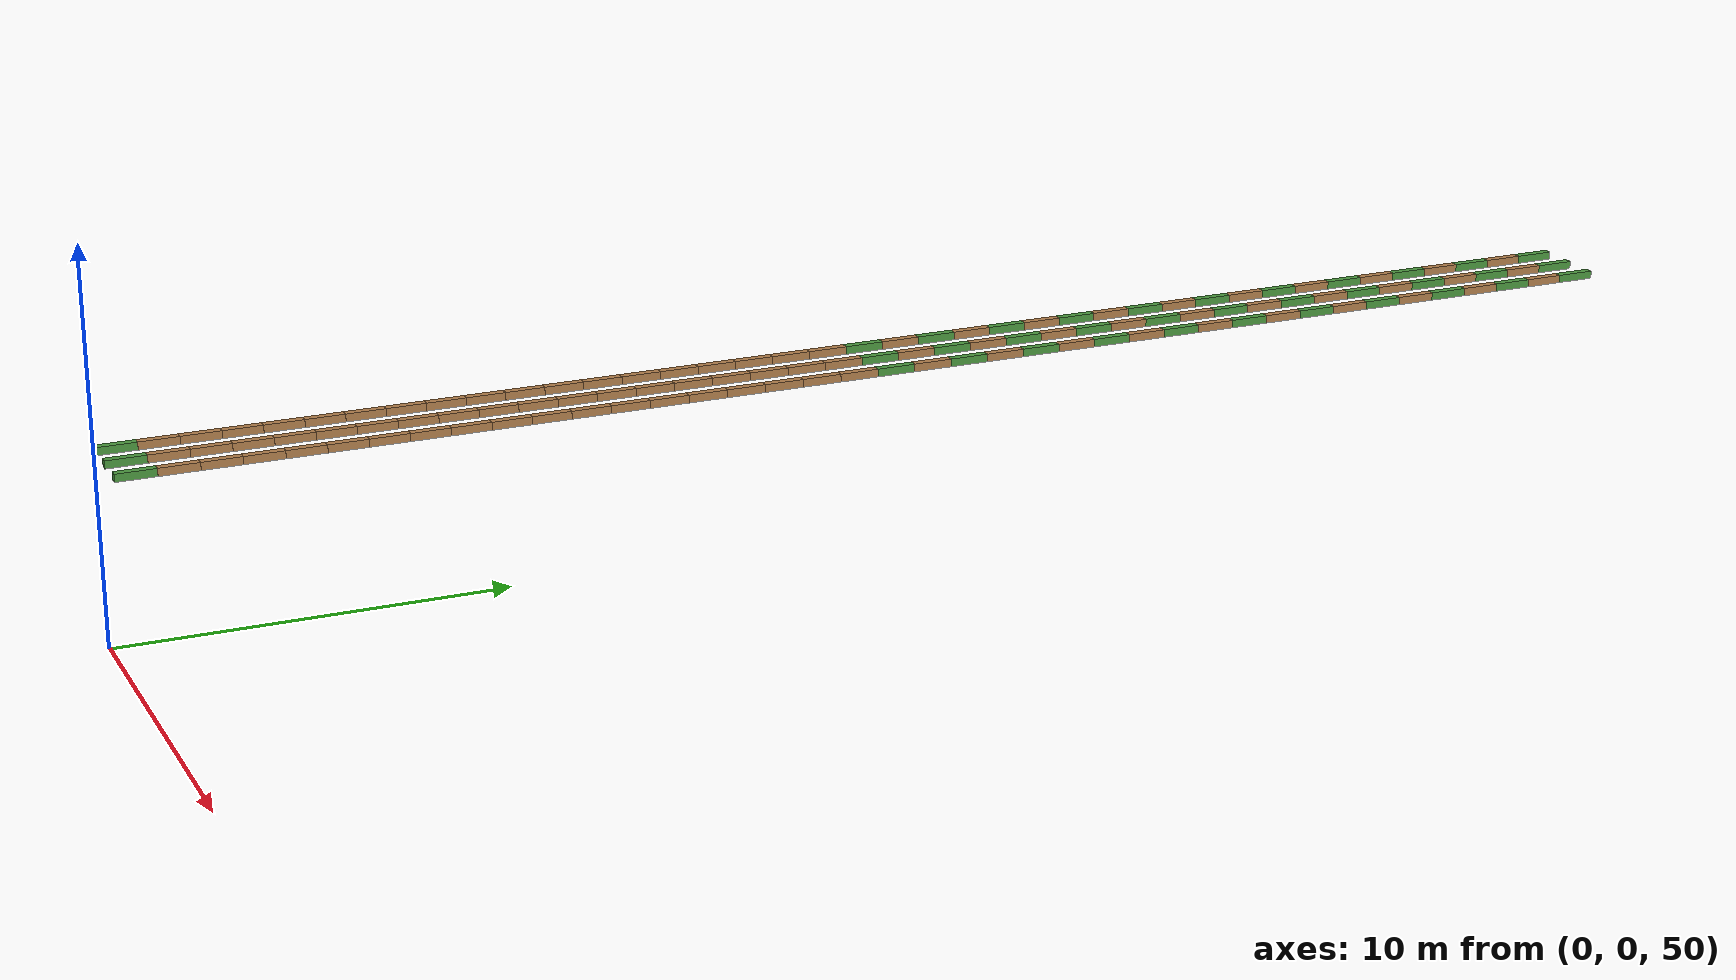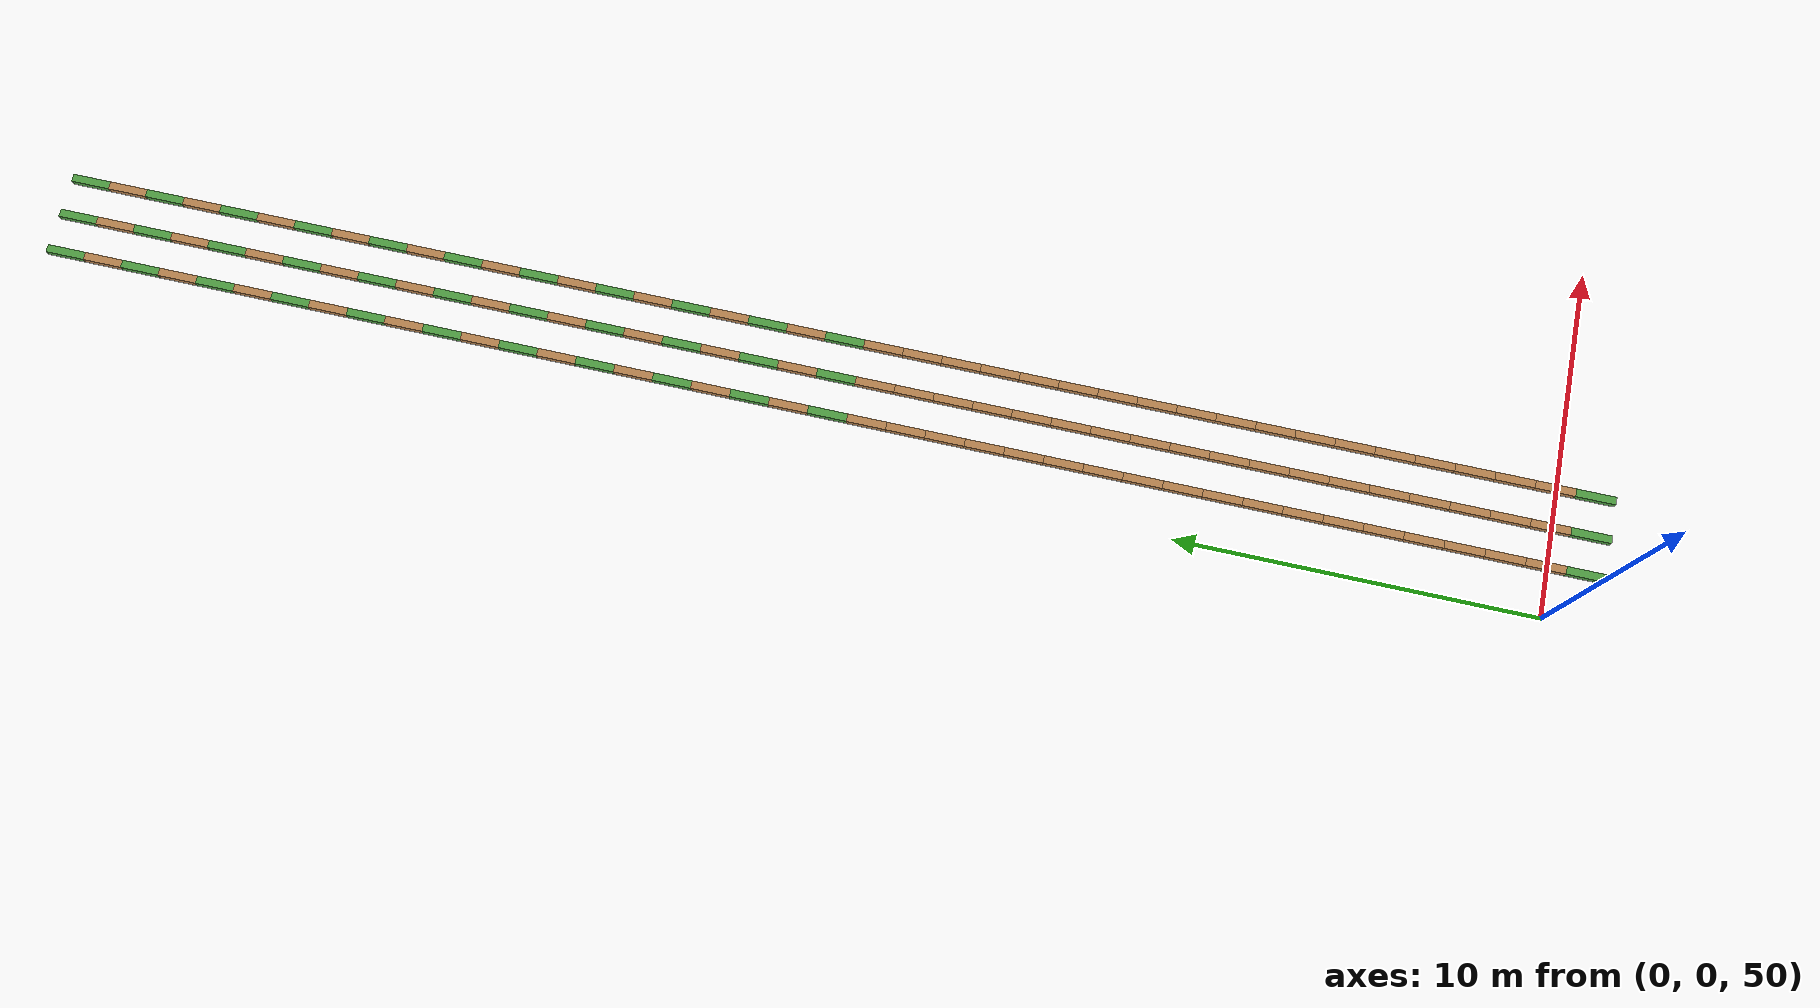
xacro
<?xml version="1.0"?>
<robot name="continuous_pendulum"
       xmlns:xi="http://www.w3.org/2001/XInclude"
       xmlns:gazebo="http://playerstage.sourceforge.net/gazebo/xmlschema/#gz"
       xmlns:model="http://playerstage.sourceforge.net/gazebo/xmlschema/#model"
       xmlns:sensor="http://playerstage.sourceforge.net/gazebo/xmlschema/#sensor"
       xmlns:body="http://playerstage.sourceforge.net/gazebo/xmlschema/#body"
       xmlns:geom="http://playerstage.sourceforge.net/gazebo/xmlschema/#geom"
       xmlns:joint="http://playerstage.sourceforge.net/gazebo/xmlschema/#joint"
       xmlns:interface="http://playerstage.sourceforge.net/gazebo/xmlschema/#interface"
       xmlns:rendering="http://playerstage.sourceforge.net/gazebo/xmlschema/#rendering"
       xmlns:renderable="http://playerstage.sourceforge.net/gazebo/xmlschema/#renderable"
       xmlns:controller="http://playerstage.sourceforge.net/gazebo/xmlschema/#controller"
       xmlns:xacro="http://ros.org/wiki/xacro"
       xmlns:physics="http://playerstage.sourceforge.net/gazebo/xmlschema/#physics">

  <link name="world"/>
  <!--
     A pendulum constructed from single continuous link and a mass with some moment of inertia
  -->
  <xacro:macro name="one_link" params="link_name parent *axis *origin material">
    <joint name="${link_name}_joint" type="continuous" >
      <insert_block name="origin"/>
      <insert_block name="axis"/>
      <parent link="${parent}" />
      <child link="${link_name}" />
      <dynamics damping="0.0" />
    </joint>
    <link name="${link_name}">
      <inertial >
        <mass value="1.0" />
        <origin xyz="0 1 0" />
        <inertia  ixx="0.0" ixy="0.0"  ixz="0.0"  iyy="0.0"  iyz="0.0"  izz="0.0" />
      </inertial>
      <visual >
        <origin xyz="0 0.5 0" rpy="0 0 0" />
        <geometry>
          <box size="0.2 1.0 0.2" />
        </geometry>
      </visual>
      <collision >
        <origin xyz="0 0.5 0" rpy="0 0 0" />
        <geometry>
          <box size="0.2 1.0 0.2" />
        </geometry>
      </collision>
    </link>
    <gazebo reference="${link_name}">
      <material>${material}</material>
      <turnGravityOff>false</turnGravityOff>
    </gazebo>
  </xacro:macro>

  <xacro:one_link link_name="link1" parent="world" material="Gazebo/GrassFloor">
    <origin xyz="0 0 55" rpy="0 0 0"/>
    <axis xyz="1 0 0" />
  </xacro:one_link>
  <xacro:one_link link_name="link2" parent="link1" material="Gazebo/LightWood">
    <origin xyz="0 1 0" rpy="0 0 0"/>
    <axis xyz="1 0 0" />
  </xacro:one_link>
  <xacro:one_link link_name="link3" parent="link2" material="Gazebo/LightWood">
    <origin xyz="0 1 0" rpy="0 0 0"/>
    <axis xyz="1 0 0" />
  </xacro:one_link>
  <xacro:one_link link_name="link4" parent="link3" material="Gazebo/LightWood">
    <origin xyz="0 1 0" rpy="0 0 0"/>
    <axis xyz="1 0 0" />
  </xacro:one_link>
  <xacro:one_link link_name="link5" parent="link4" material="Gazebo/LightWood">
    <origin xyz="0 1 0" rpy="0 0 0"/>
    <axis xyz="1 0 0" />
  </xacro:one_link>
  <xacro:one_link link_name="link6" parent="link5" material="Gazebo/LightWood">
    <origin xyz="0 1 0" rpy="0 0 0"/>
    <axis xyz="1 0 0" />
  </xacro:one_link>
  <xacro:one_link link_name="link7" parent="link6" material="Gazebo/LightWood">
    <origin xyz="0 1 0" rpy="0 0 0"/>
    <axis xyz="1 0 0" />
  </xacro:one_link>
  <xacro:one_link link_name="link8" parent="link7" material="Gazebo/LightWood">
    <origin xyz="0 1 0" rpy="0 0 0"/>
    <axis xyz="1 0 0" />
  </xacro:one_link>
  <xacro:one_link link_name="link9" parent="link8" material="Gazebo/LightWood">
    <origin xyz="0 1 0" rpy="0 0 0"/>
    <axis xyz="1 0 0" />
  </xacro:one_link>
  <xacro:one_link link_name="link10" parent="link9" material="Gazebo/LightWood">
    <origin xyz="0 1 0" rpy="0 0 0"/>
    <axis xyz="1 0 0" />
  </xacro:one_link>
  <xacro:one_link link_name="link11" parent="link10" material="Gazebo/LightWood">
    <origin xyz="0 1 0" rpy="0 0 0"/>
    <axis xyz="1 0 0" />
  </xacro:one_link>
  <xacro:one_link link_name="link12" parent="link11" material="Gazebo/LightWood">
    <origin xyz="0 1 0" rpy="0 0 0"/>
    <axis xyz="1 0 0" />
  </xacro:one_link>
  <xacro:one_link link_name="link13" parent="link12" material="Gazebo/LightWood">
    <origin xyz="0 1 0" rpy="0 0 0"/>
    <axis xyz="1 0 0" />
  </xacro:one_link>
  <xacro:one_link link_name="link14" parent="link13" material="Gazebo/LightWood">
    <origin xyz="0 1 0" rpy="0 0 0"/>
    <axis xyz="1 0 0" />
  </xacro:one_link>
  <xacro:one_link link_name="link15" parent="link14" material="Gazebo/LightWood">
    <origin xyz="0 1 0" rpy="0 0 0"/>
    <axis xyz="1 0 0" />
  </xacro:one_link>
  <xacro:one_link link_name="link16" parent="link15" material="Gazebo/LightWood">
    <origin xyz="0 1 0" rpy="0 0 0"/>
    <axis xyz="1 0 0" />
  </xacro:one_link>
  <xacro:one_link link_name="link17" parent="link16" material="Gazebo/LightWood">
    <origin xyz="0 1 0" rpy="0 0 0"/>
    <axis xyz="1 0 0" />
  </xacro:one_link>
  <xacro:one_link link_name="link18" parent="link17" material="Gazebo/LightWood">
    <origin xyz="0 1 0" rpy="0 0 0"/>
    <axis xyz="1 0 0" />
  </xacro:one_link>
  <xacro:one_link link_name="link19" parent="link18" material="Gazebo/LightWood">
    <origin xyz="0 1 0" rpy="0 0 0"/>
    <axis xyz="1 0 0" />
  </xacro:one_link>
  <xacro:one_link link_name="link20" parent="link19" material="Gazebo/GrassFloor">
    <origin xyz="0 1 0" rpy="0 0 0"/>
    <axis xyz="1 0 0" />
  </xacro:one_link>
  <xacro:one_link link_name="link21" parent="link20" material="Gazebo/LightWood">
    <origin xyz="0 1 0" rpy="0 0 0"/>
    <axis xyz="1 0 0" />
  </xacro:one_link>
  <xacro:one_link link_name="link22" parent="link21" material="Gazebo/GrassFloor">
    <origin xyz="0 1 0" rpy="0 0 0"/>
    <axis xyz="1 0 0" />
  </xacro:one_link>
  <xacro:one_link link_name="link23" parent="link22" material="Gazebo/LightWood">
    <origin xyz="0 1 0" rpy="0 0 0"/>
    <axis xyz="1 0 0" />
  </xacro:one_link>
  <xacro:one_link link_name="link24" parent="link23" material="Gazebo/GrassFloor">
    <origin xyz="0 1 0" rpy="0 0 0"/>
    <axis xyz="1 0 0" />
  </xacro:one_link>
  <xacro:one_link link_name="link25" parent="link24" material="Gazebo/LightWood">
    <origin xyz="0 1 0" rpy="0 0 0"/>
    <axis xyz="1 0 0" />
  </xacro:one_link>
  <xacro:one_link link_name="link26" parent="link25" material="Gazebo/GrassFloor">
    <origin xyz="0 1 0" rpy="0 0 0"/>
    <axis xyz="1 0 0" />
  </xacro:one_link>
  <xacro:one_link link_name="link27" parent="link26" material="Gazebo/LightWood">
    <origin xyz="0 1 0" rpy="0 0 0"/>
    <axis xyz="1 0 0" />
  </xacro:one_link>
  <xacro:one_link link_name="link28" parent="link27" material="Gazebo/GrassFloor">
    <origin xyz="0 1 0" rpy="0 0 0"/>
    <axis xyz="1 0 0" />
  </xacro:one_link>
  <xacro:one_link link_name="link29" parent="link28" material="Gazebo/LightWood">
    <origin xyz="0 1 0" rpy="0 0 0"/>
    <axis xyz="1 0 0" />
  </xacro:one_link>
  <xacro:one_link link_name="link30" parent="link29" material="Gazebo/GrassFloor">
    <origin xyz="0 1 0" rpy="0 0 0"/>
    <axis xyz="1 0 0" />
  </xacro:one_link>
  <xacro:one_link link_name="link31" parent="link30" material="Gazebo/LightWood">
    <origin xyz="0 1 0" rpy="0 0 0"/>
    <axis xyz="1 0 0" />
  </xacro:one_link>
  <xacro:one_link link_name="link32" parent="link31" material="Gazebo/GrassFloor">
    <origin xyz="0 1 0" rpy="0 0 0"/>
    <axis xyz="1 0 0" />
  </xacro:one_link>
  <xacro:one_link link_name="link33" parent="link32" material="Gazebo/LightWood">
    <origin xyz="0 1 0" rpy="0 0 0"/>
    <axis xyz="1 0 0" />
  </xacro:one_link>
  <xacro:one_link link_name="link34" parent="link33" material="Gazebo/GrassFloor">
    <origin xyz="0 1 0" rpy="0 0 0"/>
    <axis xyz="1 0 0" />
  </xacro:one_link>
  <xacro:one_link link_name="link35" parent="link34" material="Gazebo/LightWood">
    <origin xyz="0 1 0" rpy="0 0 0"/>
    <axis xyz="1 0 0" />
  </xacro:one_link>
  <xacro:one_link link_name="link36" parent="link35" material="Gazebo/GrassFloor">
    <origin xyz="0 1 0" rpy="0 0 0"/>
    <axis xyz="1 0 0" />
  </xacro:one_link>
  <xacro:one_link link_name="link37" parent="link36" material="Gazebo/LightWood">
    <origin xyz="0 1 0" rpy="0 0 0"/>
    <axis xyz="1 0 0" />
  </xacro:one_link>
  <xacro:one_link link_name="link38" parent="link37" material="Gazebo/GrassFloor">
    <origin xyz="0 1 0" rpy="0 0 0"/>
    <axis xyz="1 0 0" />
  </xacro:one_link>
  <xacro:one_link link_name="link39" parent="link38" material="Gazebo/LightWood">
    <origin xyz="0 1 0" rpy="0 0 0"/>
    <axis xyz="1 0 0" />
  </xacro:one_link>
  <xacro:one_link link_name="link40" parent="link39" material="Gazebo/GrassFloor">
    <origin xyz="0 1 0" rpy="0 0 0"/>
    <axis xyz="1 0 0" />
  </xacro:one_link>

  <xacro:one_link link_name="link1_1" parent="world" material="Gazebo/GrassFloor">
    <origin xyz="1 0 55" rpy="0 0 0"/>
    <axis xyz="1 0 0" />
  </xacro:one_link>
  <xacro:one_link link_name="link2_1" parent="link1_1" material="Gazebo/LightWood">
    <origin xyz="0 1 0" rpy="0 0 0"/>
    <axis xyz="1 0 0" />
  </xacro:one_link>
  <xacro:one_link link_name="link3_1" parent="link2_1" material="Gazebo/LightWood">
    <origin xyz="0 1 0" rpy="0 0 0"/>
    <axis xyz="1 0 0" />
  </xacro:one_link>
  <xacro:one_link link_name="link4_1" parent="link3_1" material="Gazebo/LightWood">
    <origin xyz="0 1 0" rpy="0 0 0"/>
    <axis xyz="1 0 0" />
  </xacro:one_link>
  <xacro:one_link link_name="link5_1" parent="link4_1" material="Gazebo/LightWood">
    <origin xyz="0 1 0" rpy="0 0 0"/>
    <axis xyz="1 0 0" />
  </xacro:one_link>
  <xacro:one_link link_name="link6_1" parent="link5_1" material="Gazebo/LightWood">
    <origin xyz="0 1 0" rpy="0 0 0"/>
    <axis xyz="1 0 0" />
  </xacro:one_link>
  <xacro:one_link link_name="link7_1" parent="link6_1" material="Gazebo/LightWood">
    <origin xyz="0 1 0" rpy="0 0 0"/>
    <axis xyz="1 0 0" />
  </xacro:one_link>
  <xacro:one_link link_name="link8_1" parent="link7_1" material="Gazebo/LightWood">
    <origin xyz="0 1 0" rpy="0 0 0"/>
    <axis xyz="1 0 0" />
  </xacro:one_link>
  <xacro:one_link link_name="link9_1" parent="link8_1" material="Gazebo/LightWood">
    <origin xyz="0 1 0" rpy="0 0 0"/>
    <axis xyz="1 0 0" />
  </xacro:one_link>
  <xacro:one_link link_name="link10_1" parent="link9_1" material="Gazebo/LightWood">
    <origin xyz="0 1 0" rpy="0 0 0"/>
    <axis xyz="1 0 0" />
  </xacro:one_link>
  <xacro:one_link link_name="link11_1" parent="link10_1" material="Gazebo/LightWood">
    <origin xyz="0 1 0" rpy="0 0 0"/>
    <axis xyz="1 0 0" />
  </xacro:one_link>
  <xacro:one_link link_name="link12_1" parent="link11_1" material="Gazebo/LightWood">
    <origin xyz="0 1 0" rpy="0 0 0"/>
    <axis xyz="1 0 0" />
  </xacro:one_link>
  <xacro:one_link link_name="link13_1" parent="link12_1" material="Gazebo/LightWood">
    <origin xyz="0 1 0" rpy="0 0 0"/>
    <axis xyz="1 0 0" />
  </xacro:one_link>
  <xacro:one_link link_name="link14_1" parent="link13_1" material="Gazebo/LightWood">
    <origin xyz="0 1 0" rpy="0 0 0"/>
    <axis xyz="1 0 0" />
  </xacro:one_link>
  <xacro:one_link link_name="link15_1" parent="link14_1" material="Gazebo/LightWood">
    <origin xyz="0 1 0" rpy="0 0 0"/>
    <axis xyz="1 0 0" />
  </xacro:one_link>
  <xacro:one_link link_name="link16_1" parent="link15_1" material="Gazebo/LightWood">
    <origin xyz="0 1 0" rpy="0 0 0"/>
    <axis xyz="1 0 0" />
  </xacro:one_link>
  <xacro:one_link link_name="link17_1" parent="link16_1" material="Gazebo/LightWood">
    <origin xyz="0 1 0" rpy="0 0 0"/>
    <axis xyz="1 0 0" />
  </xacro:one_link>
  <xacro:one_link link_name="link18_1" parent="link17_1" material="Gazebo/LightWood">
    <origin xyz="0 1 0" rpy="0 0 0"/>
    <axis xyz="1 0 0" />
  </xacro:one_link>
  <xacro:one_link link_name="link19_1" parent="link18_1" material="Gazebo/LightWood">
    <origin xyz="0 1 0" rpy="0 0 0"/>
    <axis xyz="1 0 0" />
  </xacro:one_link>
  <xacro:one_link link_name="link20_1" parent="link19_1" material="Gazebo/GrassFloor">
    <origin xyz="0 1 0" rpy="0 0 0"/>
    <axis xyz="1 0 0" />
  </xacro:one_link>
  <xacro:one_link link_name="link21_1" parent="link20_1" material="Gazebo/LightWood">
    <origin xyz="0 1 0" rpy="0 0 0"/>
    <axis xyz="1 0 0" />
  </xacro:one_link>
  <xacro:one_link link_name="link22_1" parent="link21_1" material="Gazebo/GrassFloor">
    <origin xyz="0 1 0" rpy="0 0 0"/>
    <axis xyz="1 0 0" />
  </xacro:one_link>
  <xacro:one_link link_name="link23_1" parent="link22_1" material="Gazebo/LightWood">
    <origin xyz="0 1 0" rpy="0 0 0"/>
    <axis xyz="1 0 0" />
  </xacro:one_link>
  <xacro:one_link link_name="link24_1" parent="link23_1" material="Gazebo/GrassFloor">
    <origin xyz="0 1 0" rpy="0 0 0"/>
    <axis xyz="1 0 0" />
  </xacro:one_link>
  <xacro:one_link link_name="link25_1" parent="link24_1" material="Gazebo/LightWood">
    <origin xyz="0 1 0" rpy="0 0 0"/>
    <axis xyz="1 0 0" />
  </xacro:one_link>
  <xacro:one_link link_name="link26_1" parent="link25_1" material="Gazebo/GrassFloor">
    <origin xyz="0 1 0" rpy="0 0 0"/>
    <axis xyz="1 0 0" />
  </xacro:one_link>
  <xacro:one_link link_name="link27_1" parent="link26_1" material="Gazebo/LightWood">
    <origin xyz="0 1 0" rpy="0 0 0"/>
    <axis xyz="1 0 0" />
  </xacro:one_link>
  <xacro:one_link link_name="link28_1" parent="link27_1" material="Gazebo/GrassFloor">
    <origin xyz="0 1 0" rpy="0 0 0"/>
    <axis xyz="1 0 0" />
  </xacro:one_link>
  <xacro:one_link link_name="link29_1" parent="link28_1" material="Gazebo/LightWood">
    <origin xyz="0 1 0" rpy="0 0 0"/>
    <axis xyz="1 0 0" />
  </xacro:one_link>
  <xacro:one_link link_name="link30_1" parent="link29_1" material="Gazebo/GrassFloor">
    <origin xyz="0 1 0" rpy="0 0 0"/>
    <axis xyz="1 0 0" />
  </xacro:one_link>
  <xacro:one_link link_name="link31_1" parent="link30_1" material="Gazebo/LightWood">
    <origin xyz="0 1 0" rpy="0 0 0"/>
    <axis xyz="1 0 0" />
  </xacro:one_link>
  <xacro:one_link link_name="link32_1" parent="link31_1" material="Gazebo/GrassFloor">
    <origin xyz="0 1 0" rpy="0 0 0"/>
    <axis xyz="1 0 0" />
  </xacro:one_link>
  <xacro:one_link link_name="link33_1" parent="link32_1" material="Gazebo/LightWood">
    <origin xyz="0 1 0" rpy="0 0 0"/>
    <axis xyz="1 0 0" />
  </xacro:one_link>
  <xacro:one_link link_name="link34_1" parent="link33_1" material="Gazebo/GrassFloor">
    <origin xyz="0 1 0" rpy="0 0 0"/>
    <axis xyz="1 0 0" />
  </xacro:one_link>
  <xacro:one_link link_name="link35_1" parent="link34_1" material="Gazebo/LightWood">
    <origin xyz="0 1 0" rpy="0 0 0"/>
    <axis xyz="1 0 0" />
  </xacro:one_link>
  <xacro:one_link link_name="link36_1" parent="link35_1" material="Gazebo/GrassFloor">
    <origin xyz="0 1 0" rpy="0 0 0"/>
    <axis xyz="1 0 0" />
  </xacro:one_link>
  <xacro:one_link link_name="link37_1" parent="link36_1" material="Gazebo/LightWood">
    <origin xyz="0 1 0" rpy="0 0 0"/>
    <axis xyz="1 0 0" />
  </xacro:one_link>
  <xacro:one_link link_name="link38_1" parent="link37_1" material="Gazebo/GrassFloor">
    <origin xyz="0 1 0" rpy="0 0 0"/>
    <axis xyz="1 0 0" />
  </xacro:one_link>
  <xacro:one_link link_name="link39_1" parent="link38_1" material="Gazebo/LightWood">
    <origin xyz="0 1 0" rpy="0 0 0"/>
    <axis xyz="1 0 0" />
  </xacro:one_link>
  <xacro:one_link link_name="link40_1" parent="link39_1" material="Gazebo/GrassFloor">
    <origin xyz="0 1 0" rpy="0 0 0"/>
    <axis xyz="1 0 0" />
  </xacro:one_link>

  <xacro:one_link link_name="link1_2" parent="world" material="Gazebo/GrassFloor">
    <origin xyz="2 0 55" rpy="0 0 0"/>
    <axis xyz="1 0 0" />
  </xacro:one_link>
  <xacro:one_link link_name="link2_2" parent="link1_2" material="Gazebo/LightWood">
    <origin xyz="0 1 0" rpy="0 0 0"/>
    <axis xyz="1 0 0" />
  </xacro:one_link>
  <xacro:one_link link_name="link3_2" parent="link2_2" material="Gazebo/LightWood">
    <origin xyz="0 1 0" rpy="0 0 0"/>
    <axis xyz="1 0 0" />
  </xacro:one_link>
  <xacro:one_link link_name="link4_2" parent="link3_2" material="Gazebo/LightWood">
    <origin xyz="0 1 0" rpy="0 0 0"/>
    <axis xyz="1 0 0" />
  </xacro:one_link>
  <xacro:one_link link_name="link5_2" parent="link4_2" material="Gazebo/LightWood">
    <origin xyz="0 1 0" rpy="0 0 0"/>
    <axis xyz="1 0 0" />
  </xacro:one_link>
  <xacro:one_link link_name="link6_2" parent="link5_2" material="Gazebo/LightWood">
    <origin xyz="0 1 0" rpy="0 0 0"/>
    <axis xyz="1 0 0" />
  </xacro:one_link>
  <xacro:one_link link_name="link7_2" parent="link6_2" material="Gazebo/LightWood">
    <origin xyz="0 1 0" rpy="0 0 0"/>
    <axis xyz="1 0 0" />
  </xacro:one_link>
  <xacro:one_link link_name="link8_2" parent="link7_2" material="Gazebo/LightWood">
    <origin xyz="0 1 0" rpy="0 0 0"/>
    <axis xyz="1 0 0" />
  </xacro:one_link>
  <xacro:one_link link_name="link9_2" parent="link8_2" material="Gazebo/LightWood">
    <origin xyz="0 1 0" rpy="0 0 0"/>
    <axis xyz="1 0 0" />
  </xacro:one_link>
  <xacro:one_link link_name="link10_2" parent="link9_2" material="Gazebo/LightWood">
    <origin xyz="0 1 0" rpy="0 0 0"/>
    <axis xyz="1 0 0" />
  </xacro:one_link>
  <xacro:one_link link_name="link11_2" parent="link10_2" material="Gazebo/LightWood">
    <origin xyz="0 1 0" rpy="0 0 0"/>
    <axis xyz="1 0 0" />
  </xacro:one_link>
  <xacro:one_link link_name="link12_2" parent="link11_2" material="Gazebo/LightWood">
    <origin xyz="0 1 0" rpy="0 0 0"/>
    <axis xyz="1 0 0" />
  </xacro:one_link>
  <xacro:one_link link_name="link13_2" parent="link12_2" material="Gazebo/LightWood">
    <origin xyz="0 1 0" rpy="0 0 0"/>
    <axis xyz="1 0 0" />
  </xacro:one_link>
  <xacro:one_link link_name="link14_2" parent="link13_2" material="Gazebo/LightWood">
    <origin xyz="0 1 0" rpy="0 0 0"/>
    <axis xyz="1 0 0" />
  </xacro:one_link>
  <xacro:one_link link_name="link15_2" parent="link14_2" material="Gazebo/LightWood">
    <origin xyz="0 1 0" rpy="0 0 0"/>
    <axis xyz="1 0 0" />
  </xacro:one_link>
  <xacro:one_link link_name="link16_2" parent="link15_2" material="Gazebo/LightWood">
    <origin xyz="0 1 0" rpy="0 0 0"/>
    <axis xyz="1 0 0" />
  </xacro:one_link>
  <xacro:one_link link_name="link17_2" parent="link16_2" material="Gazebo/LightWood">
    <origin xyz="0 1 0" rpy="0 0 0"/>
    <axis xyz="1 0 0" />
  </xacro:one_link>
  <xacro:one_link link_name="link18_2" parent="link17_2" material="Gazebo/LightWood">
    <origin xyz="0 1 0" rpy="0 0 0"/>
    <axis xyz="1 0 0" />
  </xacro:one_link>
  <xacro:one_link link_name="link19_2" parent="link18_2" material="Gazebo/LightWood">
    <origin xyz="0 1 0" rpy="0 0 0"/>
    <axis xyz="1 0 0" />
  </xacro:one_link>
  <xacro:one_link link_name="link20_2" parent="link19_2" material="Gazebo/GrassFloor">
    <origin xyz="0 1 0" rpy="0 0 0"/>
    <axis xyz="1 0 0" />
  </xacro:one_link>
  <xacro:one_link link_name="link21_2" parent="link20_2" material="Gazebo/LightWood">
    <origin xyz="0 1 0" rpy="0 0 0"/>
    <axis xyz="1 0 0" />
  </xacro:one_link>
  <xacro:one_link link_name="link22_2" parent="link21_2" material="Gazebo/GrassFloor">
    <origin xyz="0 1 0" rpy="0 0 0"/>
    <axis xyz="1 0 0" />
  </xacro:one_link>
  <xacro:one_link link_name="link23_2" parent="link22_2" material="Gazebo/LightWood">
    <origin xyz="0 1 0" rpy="0 0 0"/>
    <axis xyz="1 0 0" />
  </xacro:one_link>
  <xacro:one_link link_name="link24_2" parent="link23_2" material="Gazebo/GrassFloor">
    <origin xyz="0 1 0" rpy="0 0 0"/>
    <axis xyz="1 0 0" />
  </xacro:one_link>
  <xacro:one_link link_name="link25_2" parent="link24_2" material="Gazebo/LightWood">
    <origin xyz="0 1 0" rpy="0 0 0"/>
    <axis xyz="1 0 0" />
  </xacro:one_link>
  <xacro:one_link link_name="link26_2" parent="link25_2" material="Gazebo/GrassFloor">
    <origin xyz="0 1 0" rpy="0 0 0"/>
    <axis xyz="1 0 0" />
  </xacro:one_link>
  <xacro:one_link link_name="link27_2" parent="link26_2" material="Gazebo/LightWood">
    <origin xyz="0 1 0" rpy="0 0 0"/>
    <axis xyz="1 0 0" />
  </xacro:one_link>
  <xacro:one_link link_name="link28_2" parent="link27_2" material="Gazebo/GrassFloor">
    <origin xyz="0 1 0" rpy="0 0 0"/>
    <axis xyz="1 0 0" />
  </xacro:one_link>
  <xacro:one_link link_name="link29_2" parent="link28_2" material="Gazebo/LightWood">
    <origin xyz="0 1 0" rpy="0 0 0"/>
    <axis xyz="1 0 0" />
  </xacro:one_link>
  <xacro:one_link link_name="link30_2" parent="link29_2" material="Gazebo/GrassFloor">
    <origin xyz="0 1 0" rpy="0 0 0"/>
    <axis xyz="1 0 0" />
  </xacro:one_link>
  <xacro:one_link link_name="link31_2" parent="link30_2" material="Gazebo/LightWood">
    <origin xyz="0 1 0" rpy="0 0 0"/>
    <axis xyz="1 0 0" />
  </xacro:one_link>
  <xacro:one_link link_name="link32_2" parent="link31_2" material="Gazebo/GrassFloor">
    <origin xyz="0 1 0" rpy="0 0 0"/>
    <axis xyz="1 0 0" />
  </xacro:one_link>
  <xacro:one_link link_name="link33_2" parent="link32_2" material="Gazebo/LightWood">
    <origin xyz="0 1 0" rpy="0 0 0"/>
    <axis xyz="1 0 0" />
  </xacro:one_link>
  <xacro:one_link link_name="link34_2" parent="link33_2" material="Gazebo/GrassFloor">
    <origin xyz="0 1 0" rpy="0 0 0"/>
    <axis xyz="1 0 0" />
  </xacro:one_link>
  <xacro:one_link link_name="link35_2" parent="link34_2" material="Gazebo/LightWood">
    <origin xyz="0 1 0" rpy="0 0 0"/>
    <axis xyz="1 0 0" />
  </xacro:one_link>
  <xacro:one_link link_name="link36_2" parent="link35_2" material="Gazebo/GrassFloor">
    <origin xyz="0 1 0" rpy="0 0 0"/>
    <axis xyz="1 0 0" />
  </xacro:one_link>
  <xacro:one_link link_name="link37_2" parent="link36_2" material="Gazebo/LightWood">
    <origin xyz="0 1 0" rpy="0 0 0"/>
    <axis xyz="1 0 0" />
  </xacro:one_link>
  <xacro:one_link link_name="link38_2" parent="link37_2" material="Gazebo/GrassFloor">
    <origin xyz="0 1 0" rpy="0 0 0"/>
    <axis xyz="1 0 0" />
  </xacro:one_link>
  <xacro:one_link link_name="link39_2" parent="link38_2" material="Gazebo/LightWood">
    <origin xyz="0 1 0" rpy="0 0 0"/>
    <axis xyz="1 0 0" />
  </xacro:one_link>
  <xacro:one_link link_name="link40_2" parent="link39_2" material="Gazebo/GrassFloor">
    <origin xyz="0 1 0" rpy="0 0 0"/>
    <axis xyz="1 0 0" />
  </xacro:one_link>

  <gazebo>
      <!-- PR2_ACTARRAY -->
      <controller:gazebo_ros_controller_manager name="gazebo_ros_controller_manager" plugin="libgazebo_ros_controller_manager.so">
        <alwaysOn>true</alwaysOn>
        <updateRate>1000.0</updateRate>
        <interface:audio name="gazebo_ros_controller_manager_dummy_iface" />
      </controller:gazebo_ros_controller_manager>

      <!-- gazebo_ros_p3d for position groundtruth -->
      <controller:gazebo_ros_p3d name="p3d_link1_controller" plugin="libgazebo_ros_p3d.so">
          <alwaysOn>true</alwaysOn>
          <updateRate>100.0</updateRate>
          <bodyName>link1</bodyName>
          <topicName>link1_pose</topicName>
          <frameName>map</frameName>
          <interface:position name="p3d_link1_position"/>
      </controller:gazebo_ros_p3d>
      <controller:gazebo_ros_p3d name="p3d_link2_controller" plugin="libgazebo_ros_p3d.so">
          <alwaysOn>true</alwaysOn>
          <updateRate>100.0</updateRate>
          <bodyName>link2</bodyName>
          <topicName>link2_pose</topicName>
          <frameName>map</frameName>
          <interface:position name="p3d_link2_position"/>
      </controller:gazebo_ros_p3d>
  </gazebo>

  <!-- mechanism controls -->
  <transmission type="SimpleTransmission" name="link1_trans">
    <actuator name="link1_motor" />
    <joint name="link1_joint" />
    <mechanicalReduction>1</mechanicalReduction>
    <motorTorqueConstant>1</motorTorqueConstant>
  </transmission>

  <transmission type="SimpleTransmission" name="link2_trans">
    <actuator name="link2_motor" />
    <joint name="link2_joint" />
    <mechanicalReduction>1</mechanicalReduction>
    <motorTorqueConstant>1</motorTorqueConstant>
  </transmission>

</robot>
